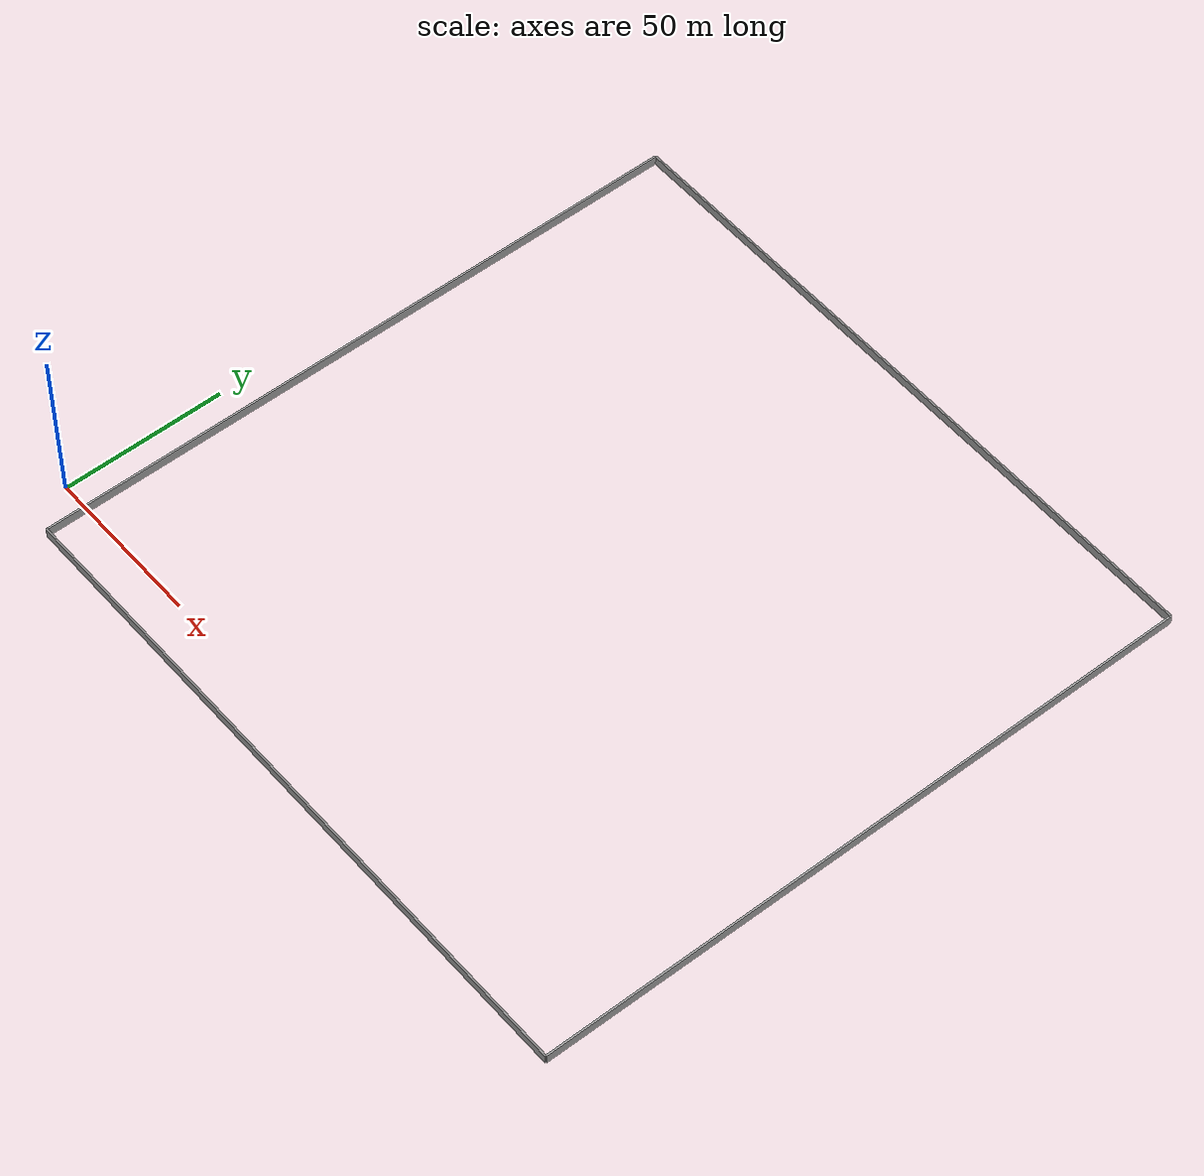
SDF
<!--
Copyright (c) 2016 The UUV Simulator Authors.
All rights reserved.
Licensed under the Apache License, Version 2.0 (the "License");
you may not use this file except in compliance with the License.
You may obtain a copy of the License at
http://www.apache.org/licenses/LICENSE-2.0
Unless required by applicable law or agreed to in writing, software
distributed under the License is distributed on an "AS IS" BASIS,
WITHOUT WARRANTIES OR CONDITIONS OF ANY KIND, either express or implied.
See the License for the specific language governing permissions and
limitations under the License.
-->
<sdf version="1.5">
 <world name="lake">
  <physics name="default_physics" default="true" type="ode">
   <max_step_size>0.002</max_step_size>
   <real_time_factor>1</real_time_factor>
   <real_time_update_rate>500</real_time_update_rate>
   <ode><solver><type>quick</type><iters>50</iters><sor>0.5</sor></solver></ode>
  </physics>
  <scene>
   <ambient>0.01 0.01 0.01 1.0</ambient>
   <sky><clouds><speed>12</speed></clouds></sky>
   <shadows>1</shadows>
  </scene>
  <spherical_coordinates>
   <latitude_deg>47.6278771</latitude_deg>
   <longitude_deg>9.334553</longitude_deg>
  </spherical_coordinates>
  <light type="directional" name="sun1">
   <pose>50 0 150 0 0 0</pose>
   <diffuse>1 1 1 1</diffuse>
   <specular>.1 .1 .1 1</specular>
   <direction>0.3 0.3 -1</direction>
  </light>
  <include><uri>model://sun</uri></include>
  <model name="south_wall_clone">
   <link name="link">
    <inertial>
     <mass>50</mass>
     <inertia>
      <ixx>0.166667</ixx>
      <ixy>0</ixy>
      <ixz>0</ixz>
      <iyy>0.166667</iyy>
      <iyz>0</iyz>
      <izz>0.166667</izz>
     </inertia>
    </inertial>
    <visual name="visual">
     <geometry><box><size>209.9621 0.579662 3</size></box></geometry>
     <material>
      <script><name>Gazebo/Grey</name><uri>file://media/materials/scripts/gazebo.material</uri></script>
      <ambient>0.3 0.3 0.3 1</ambient>
      <diffuse>0.7 0.7 0.7 1</diffuse>
      <specular>0.01 0.01 0.01 1</specular>
      <emissive>0 0 0 1</emissive>
      <shader type="vertex"><normal_map>__default__</normal_map></shader>
     </material>
    </visual>
    <collision name="collision">
     <geometry><box><size>209.9621 0.579662 3</size></box></geometry>
     <surface>
      <friction>
       <ode><mu>1</mu><mu2>1</mu2><fdir1>0 0 0</fdir1><slip1>0</slip1><slip2>0</slip2></ode>
       <torsional>
        <coefficient>1</coefficient>
        <patch_radius>0</patch_radius>
        <surface_radius>0</surface_radius>
        <use_patch_radius>1</use_patch_radius>
        <ode><slip>0</slip></ode>
       </torsional>
      </friction>
      <bounce><restitution_coefficient>0</restitution_coefficient><threshold>1e+06</threshold></bounce>
      <contact>
       <collide_without_contact>0</collide_without_contact>
       <collide_without_contact_bitmask>1</collide_without_contact_bitmask>
       <collide_bitmask>1</collide_bitmask>
       <ode>
        <soft_cfm>0</soft_cfm>
        <soft_erp>0.2</soft_erp>
        <kp>1e+13</kp>
        <kd>1</kd>
        <max_vel>0.01</max_vel>
        <min_depth>0</min_depth>
       </ode>
       <bullet>
        <split_impulse>1</split_impulse>
        <split_impulse_penetration_threshold>-0.01</split_impulse_penetration_threshold>
        <soft_cfm>0</soft_cfm>
        <soft_erp>0.2</soft_erp>
        <kp>1e+13</kp>
        <kd>1</kd>
       </bullet>
      </contact>
     </surface>
    </collision>
   </link>
   <static>1</static>
   <pose>100 205 -20 0 -0 0</pose>
  </model>
  <model name="south_wall_clone_0">
   <link name="link">
    <inertial>
     <mass>50</mass>
     <inertia>
      <ixx>0.166667</ixx>
      <ixy>0</ixy>
      <ixz>0</ixz>
      <iyy>0.166667</iyy>
      <iyz>0</iyz>
      <izz>0.166667</izz>
     </inertia>
    </inertial>
    <visual name="visual">
     <geometry><box><size>209.9621 0.57966 3</size></box></geometry>
     <material>
      <script><name>Gazebo/Grey</name><uri>file://media/materials/scripts/gazebo.material</uri></script>
      <ambient>0.3 0.3 0.3 1</ambient>
      <diffuse>0.7 0.7 0.7 1</diffuse>
      <specular>0.01 0.01 0.01 1</specular>
      <emissive>0 0 0 1</emissive>
      <shader type="vertex"><normal_map>__default__</normal_map></shader>
     </material>
    </visual>
    <collision name="collision">
     <geometry><box><size>209.9621 0.57966 3</size></box></geometry>
     <surface>
      <friction>
       <ode><mu>1</mu><mu2>1</mu2><fdir1>0 0 0</fdir1><slip1>0</slip1><slip2>0</slip2></ode>
       <torsional>
        <coefficient>1</coefficient>
        <patch_radius>0</patch_radius>
        <surface_radius>0</surface_radius>
        <use_patch_radius>1</use_patch_radius>
        <ode><slip>0</slip></ode>
       </torsional>
      </friction>
      <bounce><restitution_coefficient>0</restitution_coefficient><threshold>1e+06</threshold></bounce>
      <contact>
       <collide_without_contact>0</collide_without_contact>
       <collide_without_contact_bitmask>1</collide_without_contact_bitmask>
       <collide_bitmask>1</collide_bitmask>
       <ode>
        <soft_cfm>0</soft_cfm>
        <soft_erp>0.2</soft_erp>
        <kp>1e+13</kp>
        <kd>1</kd>
        <max_vel>0.01</max_vel>
        <min_depth>0</min_depth>
       </ode>
       <bullet>
        <split_impulse>1</split_impulse>
        <split_impulse_penetration_threshold>-0.01</split_impulse_penetration_threshold>
        <soft_cfm>0</soft_cfm>
        <soft_erp>0.2</soft_erp>
        <kp>1e+13</kp>
        <kd>1</kd>
       </bullet>
      </contact>
     </surface>
    </collision>
   </link>
   <static>1</static>
   <pose>205 100 -20 0 -0 1.5708</pose>
  </model>
  <model name="south_wall_clone_1">
   <link name="link">
    <inertial>
     <mass>50</mass>
     <inertia>
      <ixx>0.166667</ixx>
      <ixy>0</ixy>
      <ixz>0</ixz>
      <iyy>0.166667</iyy>
      <iyz>0</iyz>
      <izz>0.166667</izz>
     </inertia>
    </inertial>
    <visual name="visual">
     <geometry><box><size>209.9621 0.579662 3</size></box></geometry>
     <material>
      <script><name>Gazebo/Grey</name><uri>file://media/materials/scripts/gazebo.material</uri></script>
      <ambient>0.3 0.3 0.3 1</ambient>
      <diffuse>0.7 0.7 0.7 1</diffuse>
      <specular>0.01 0.01 0.01 1</specular>
      <emissive>0 0 0 1</emissive>
      <shader type="vertex"><normal_map>__default__</normal_map></shader>
     </material>
    </visual>
    <collision name="collision">
     <geometry><box><size>209.9621 0.579662 3</size></box></geometry>
     <surface>
      <friction>
       <ode><mu>1</mu><mu2>1</mu2><fdir1>0 0 0</fdir1><slip1>0</slip1><slip2>0</slip2></ode>
       <torsional>
        <coefficient>1</coefficient>
        <patch_radius>0</patch_radius>
        <surface_radius>0</surface_radius>
        <use_patch_radius>1</use_patch_radius>
        <ode><slip>0</slip></ode>
       </torsional>
      </friction>
      <bounce><restitution_coefficient>0</restitution_coefficient><threshold>1e+06</threshold></bounce>
      <contact>
       <collide_without_contact>0</collide_without_contact>
       <collide_without_contact_bitmask>1</collide_without_contact_bitmask>
       <collide_bitmask>1</collide_bitmask>
       <ode>
        <soft_cfm>0</soft_cfm>
        <soft_erp>0.2</soft_erp>
        <kp>1e+13</kp>
        <kd>1</kd>
        <max_vel>0.01</max_vel>
        <min_depth>0</min_depth>
       </ode>
       <bullet>
        <split_impulse>1</split_impulse>
        <split_impulse_penetration_threshold>-0.01</split_impulse_penetration_threshold>
        <soft_cfm>0</soft_cfm>
        <soft_erp>0.2</soft_erp>
        <kp>1e+13</kp>
        <kd>1</kd>
       </bullet>
      </contact>
     </surface>
    </collision>
   </link>
   <static>1</static>
   <pose>-5 100 -20 0 -0 1.5708</pose>
  </model>
  <model name="south_wall">
   <link name="link">
    <inertial>
     <mass>50</mass>
     <inertia>
      <ixx>0.166667</ixx>
      <ixy>0</ixy>
      <ixz>0</ixz>
      <iyy>0.166667</iyy>
      <iyz>0</iyz>
      <izz>0.166667</izz>
     </inertia>
    </inertial>
    <visual name="visual">
     <geometry><box><size>209.9621 0.579662 3</size></box></geometry>
     <material>
      <script><name>Gazebo/Grey</name><uri>file://media/materials/scripts/gazebo.material</uri></script>
      <ambient>0.3 0.3 0.3 1</ambient>
      <diffuse>0.7 0.7 0.7 1</diffuse>
      <specular>0.01 0.01 0.01 1</specular>
      <emissive>0 0 0 1</emissive>
      <shader type="vertex"><normal_map>__default__</normal_map></shader>
     </material>
    </visual>
    <collision name="collision">
     <geometry><box><size>209.9621 0.579662 3</size></box></geometry>
     <surface>
      <friction>
       <ode><mu>1</mu><mu2>1</mu2><fdir1>0 0 0</fdir1><slip1>0</slip1><slip2>0</slip2></ode>
       <torsional>
        <coefficient>1</coefficient>
        <patch_radius>0</patch_radius>
        <surface_radius>0</surface_radius>
        <use_patch_radius>1</use_patch_radius>
        <ode><slip>0</slip></ode>
       </torsional>
      </friction>
      <bounce><restitution_coefficient>0</restitution_coefficient><threshold>1e+06</threshold></bounce>
      <contact>
       <collide_without_contact>0</collide_without_contact>
       <collide_without_contact_bitmask>1</collide_without_contact_bitmask>
       <collide_bitmask>1</collide_bitmask>
       <ode>
        <soft_cfm>0</soft_cfm>
        <soft_erp>0.2</soft_erp>
        <kp>1e+13</kp>
        <kd>1</kd>
        <max_vel>0.01</max_vel>
        <min_depth>0</min_depth>
       </ode>
       <bullet>
        <split_impulse>1</split_impulse>
        <split_impulse_penetration_threshold>-0.01</split_impulse_penetration_threshold>
        <soft_cfm>0</soft_cfm>
        <soft_erp>0.2</soft_erp>
        <kp>1e+13</kp>
        <kd>1</kd>
       </bullet>
      </contact>
     </surface>
    </collision>
   </link>
   <static>1</static>
   <pose>100 -5 -20 0 -0 0</pose>
  </model>
  <plugin name="underwater_world" filename="libuuv_underwater_world_ros_plugin.so">
   <namespace>hydrodynamics</namespace>
   <constant_current>
    <topic>current_velocity</topic>
    <velocity><mean>0</mean><min>-5</min><max>5</max><mu>0.0</mu><noiseAmp>0.0</noiseAmp></velocity>
    <horizontal_angle>
     <mean>0</mean>
     <min>-3.141592653589793238</min>
     <max>3.141592653589793238</max>
     <mu>0.0</mu>
     <noiseAmp>0.0</noiseAmp>
    </horizontal_angle>
    <vertical_angle>
     <mean>0</mean>
     <min>-3.141592653589793238</min>
     <max>3.141592653589793238</max>
     <mu>0.0</mu>
     <noiseAmp>0.0</noiseAmp>
    </vertical_angle>
   </constant_current>
  </plugin>
 </world>
</sdf>
